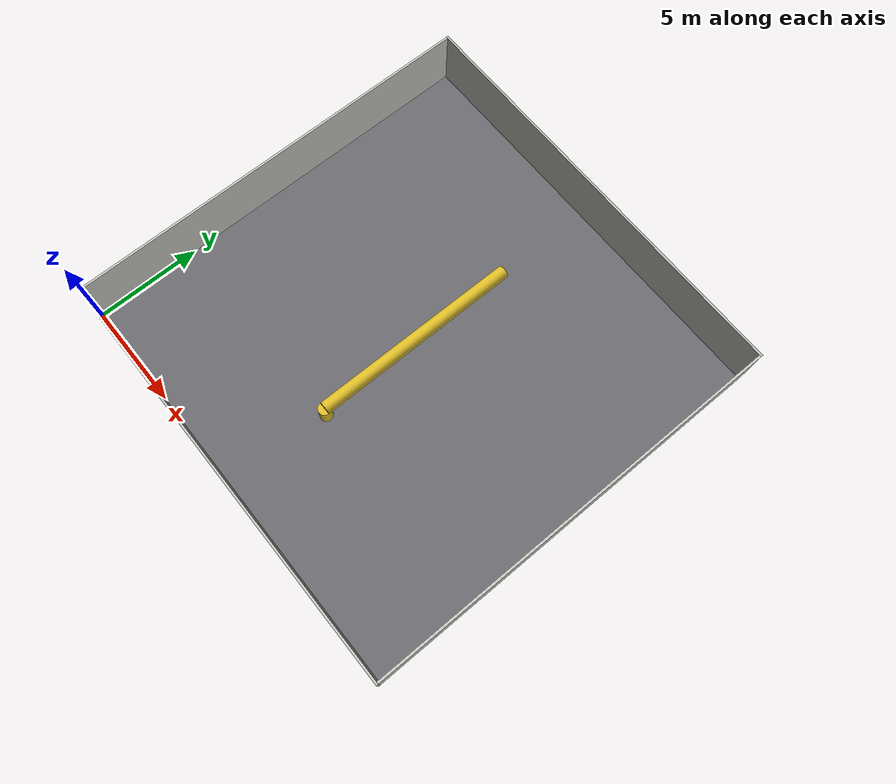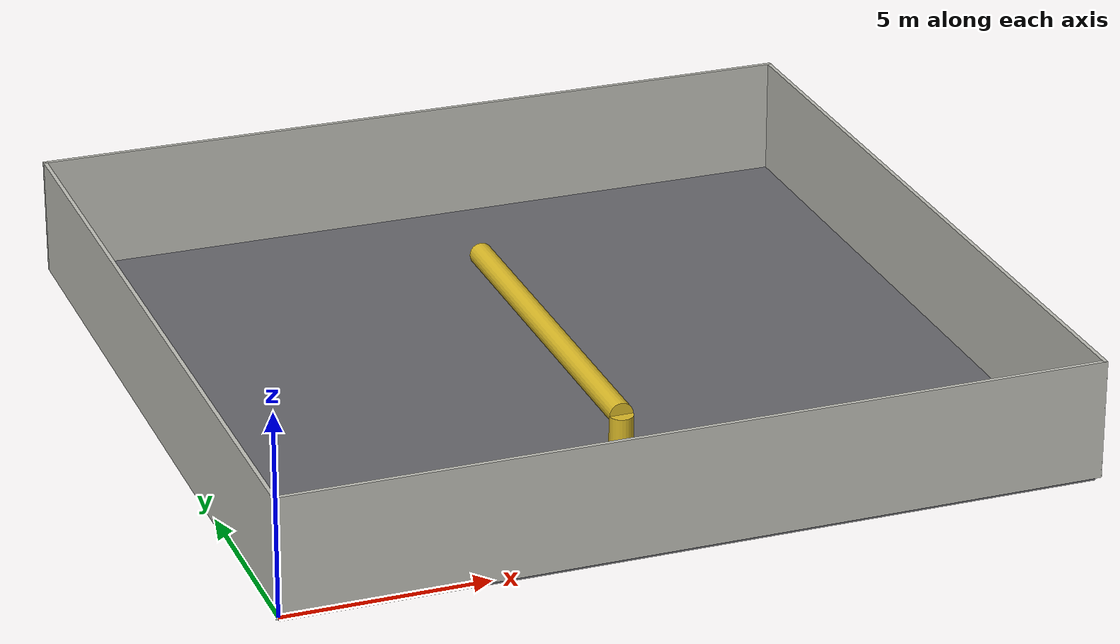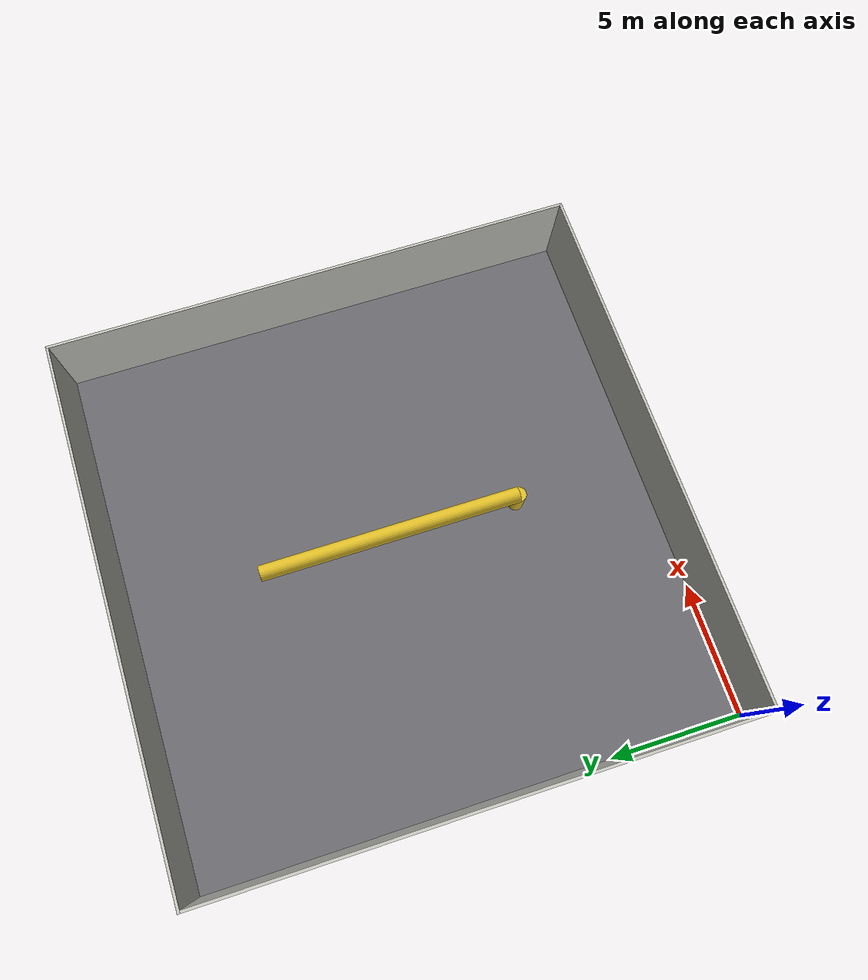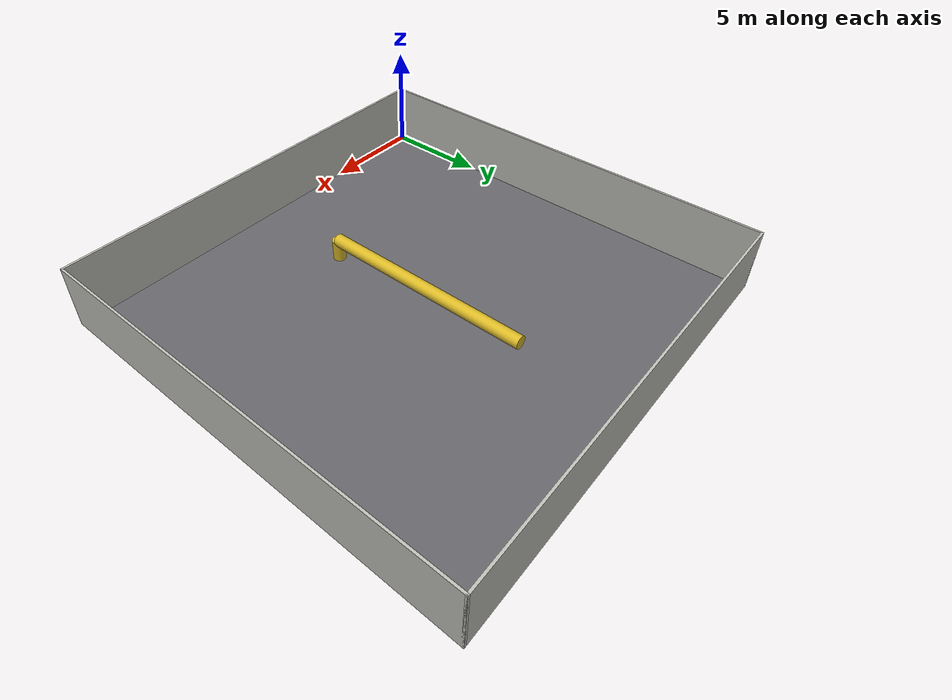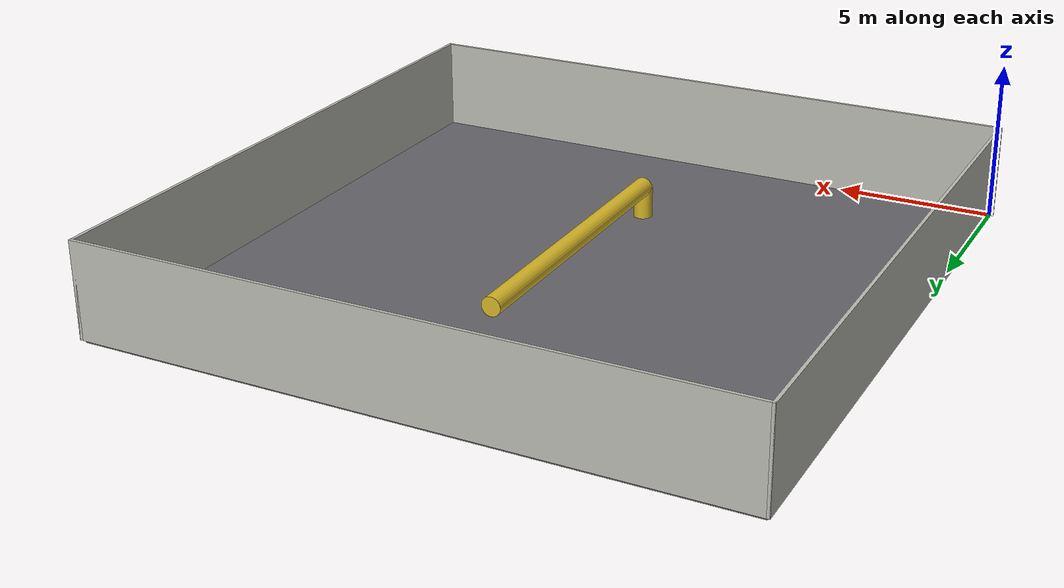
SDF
<?xml version="1.0" ?>
<sdf version="1.10">
  <world name="pipeline">

    <!-- Wall clock, D3. 250 Hz oversamples the 100 Hz pose stream from PoseMirror;
         the gz default of 1 kHz would be pure waste with no dynamics to resolve. -->
    <physics name="default_physics" type="ignored">
      <max_step_size>0.004</max_step_size>
      <real_time_factor>1.0</real_time_factor>
    </physics>

    <!-- Everything except the drone is static, and the drone is driven by pose from PoseMirror
         The gravity will just break the SetWorldPoseCmd -->
    <gravity>0 0 0</gravity>

    <plugin filename="gz-sim-physics-system"
            name="gz::sim::systems::Physics"/>
    <!-- user-commands provides the /world/pipeline/create service that ros_gz_sim's
         `create` executable calls to spawn the drone -->
    <plugin filename="gz-sim-user-commands-system"
            name="gz::sim::systems::UserCommands"/>
    <plugin filename="gz-sim-scene-broadcaster-system"
            name="gz::sim::systems::SceneBroadcaster"/>
    <!-- Hosts the FPV camera declared in fpv_camera.urdf.xacro -->
    <plugin filename="gz-sim-sensors-system"
            name="gz::sim::systems::Sensors">
      <render_engine>ogre2</render_engine>
    </plugin>
    <plugin filename="pose_mirror" name="haptic_plume::PoseMirror">
      <topic>/hp/odom</topic>
      <model_name>drone</model_name>
    </plugin>

    <scene>
      <ambient>0.6 0.6 0.6 1</ambient>
      <background>0.75 0.78 0.82 1</background>
      <shadows>true</shadows>
    </scene>

    <light type="directional" name="sun">
      <cast_shadows>true</cast_shadows>
      <pose>10 10 10 0 0 0</pose>
      <diffuse>0.9 0.9 0.9 1</diffuse>
      <specular>0.2 0.2 0.2 1</specular>
      <direction>-0.4 0.3 -0.9</direction>
    </light>

    <!-- Hall floor. Top surface sits at z = 0, which is ground_z in obstacles.yaml -->
    <model name="floor">
      <static>true</static>
      <pose>10 10 -0.05 0 0 0</pose>
      <link name="floor_link">
        <visual name="floor_visual">
          <geometry>
            <box><size>20 20 0.1</size></box>
          </geometry>
          <material>
            <ambient>0.35 0.35 0.37 1</ambient>
            <diffuse>0.40 0.40 0.42 1</diffuse>
          </material>
        </visual>
      </link>
    </model>

    <model name="wall_south">
      <static>true</static>
      <pose>10 -0.05 1.5 0 0 0</pose>
      <link name="wall_link">
        <visual name="wall_visual">
          <geometry>
            <box><size>20.2 0.1 3.0</size></box>
          </geometry>
          <material>
            <ambient>0.68 0.68 0.65 1</ambient>
            <diffuse>0.75 0.75 0.72 1</diffuse>
          </material>
        </visual>
      </link>
    </model>

    <model name="wall_north">
      <static>true</static>
      <pose>10 20.05 1.5 0 0 0</pose>
      <link name="wall_link">
        <visual name="wall_visual">
          <geometry>
            <box><size>20.2 0.1 3.0</size></box>
          </geometry>
          <material>
            <ambient>0.68 0.68 0.65 1</ambient>
            <diffuse>0.75 0.75 0.72 1</diffuse>
          </material>
        </visual>
      </link>
    </model>

    <model name="wall_west">
      <static>true</static>
      <pose>-0.05 10 1.5 0 0 0</pose>
      <link name="wall_link">
        <visual name="wall_visual">
          <geometry>
            <box><size>0.1 20.2 3.0</size></box>
          </geometry>
          <material>
            <ambient>0.68 0.68 0.65 1</ambient>
            <diffuse>0.75 0.75 0.72 1</diffuse>
          </material>
        </visual>
      </link>
    </model>

    <model name="wall_east">
      <static>true</static>
      <pose>20.05 10 1.5 0 0 0</pose>
      <link name="wall_link">
        <visual name="wall_visual">
          <geometry>
            <box><size>0.1 20.2 3.0</size></box>
          </geometry>
          <material>
            <ambient>0.68 0.68 0.65 1</ambient>
            <diffuse>0.75 0.75 0.72 1</diffuse>
          </material>
        </visual>
      </link>
    </model>

    <model name="main_run">
      <static>true</static>
      <pose>10 10 1 1.5707963267948966 0 0</pose>
      <link name="pipe_link">
        <visual name="pipe_visual">
          <geometry>
            <cylinder>
              <radius>0.30</radius>
              <length>10.0</length>
            </cylinder>
          </geometry>
          <material>
            <ambient>0.70 0.58 0.10 1</ambient>
            <diffuse>0.85 0.72 0.15 1</diffuse>
          </material>
        </visual>
      </link>
    </model>

    <!-- riser: p0 (10, 5, 0) -> p1 (10, 5, 1), radius 0.30 -->
    <model name="riser">
      <static>true</static>
      <pose>10 5 0.5 0 0 0</pose>
      <link name="pipe_link">
        <visual name="pipe_visual">
          <geometry>
            <cylinder>
              <radius>0.30</radius>
              <length>1.0</length>
            </cylinder>
          </geometry>
          <material>
            <ambient>0.70 0.58 0.10 1</ambient>
            <diffuse>0.85 0.72 0.15 1</diffuse>
          </material>
        </visual>
      </link>
    </model>

  </world>
</sdf>
